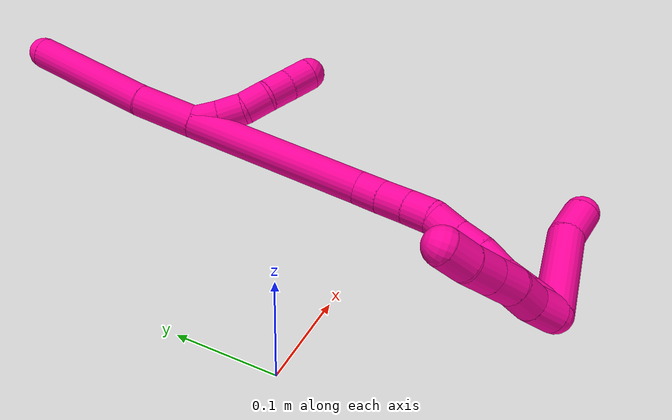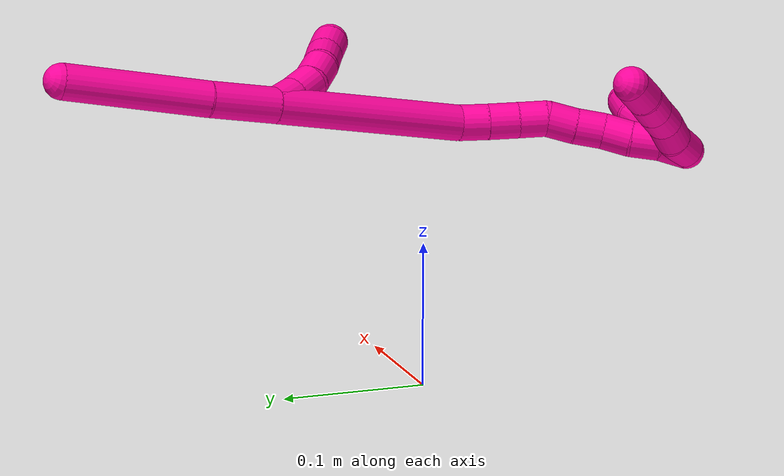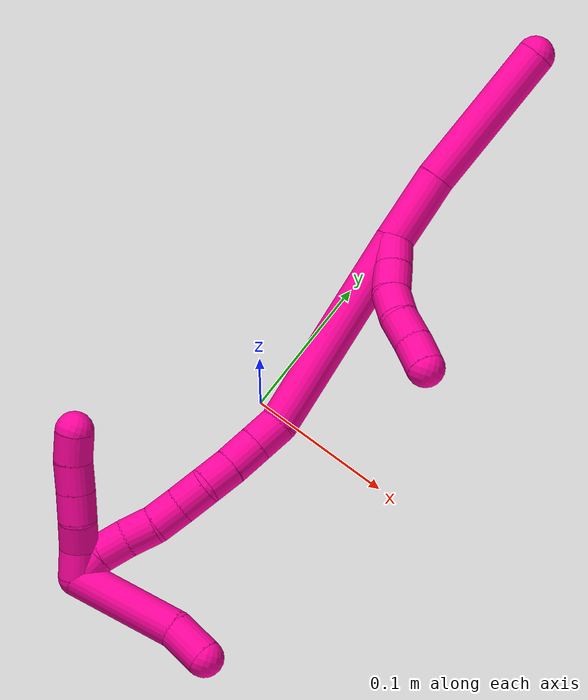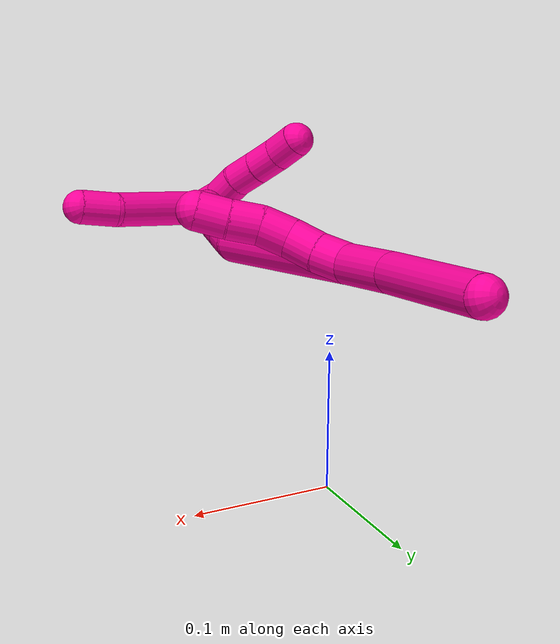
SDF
<sdf version="1.7">
 <world name="default">
  <model name="photoneo_s_sensor">
   <static>1</static>
   <pose>0 0 2 1.57079 1.57079 3.14159</pose>
   <link name="link">
    <inertial><mass>0.1</mass></inertial>
    <sensor name="sensor" type="depth">
     <update_rate>30</update_rate>
     <camera>
      <horizontal_fov>1.22</horizontal_fov>
      <image><width>1920</width><height>1200</height><format>B8G8R8</format></image>
      <clip><near>0.1</near><far>4</far></clip>
      <depth_camera><output>points</output></depth_camera>
     </camera>
     <plugin name="camera_plugin" filename="libgazebo_ros_depth_camera.so">
      <baseline>0.2</baseline>
      <alwaysOn>1</alwaysOn>
      <updateRate>0.0</updateRate>
      <cameraName>camera_ir</cameraName>
      <imageTopicName>/camera/color/image_raw</imageTopicName>
      <cameraInfoTopicName>/camera/color/camera_info</cameraInfoTopicName>
      <depthImageTopicName>/camera/depth/image_raw</depthImageTopicName>
      <depthImageCameraInfoTopicName>/camera/depth/camera_info</depthImageCameraInfoTopicName>
      <pointCloudTopicName>/camera/depth/points</pointCloudTopicName>
      <frameName>fr_optical</frameName>
      <pointCloudCutoff>0.1</pointCloudCutoff>
      <pointCloudCutoffMax>2.0</pointCloudCutoffMax>
      <distortionK1>0</distortionK1>
      <distortionK2>0</distortionK2>
      <distortionK3>0</distortionK3>
      <distortionT1>0</distortionT1>
      <distortionT2>0</distortionT2>
      <CxPrime>0</CxPrime>
      <Cx>0</Cx>
      <Cy>0</Cy>
      <focalLength>0</focalLength>
      <hackBaseline>0</hackBaseline>
     </plugin>
    </sensor>
   </link>
  </model>
  <model name="bin">
   <static>1</static>
   <link name="bottom">
    <collision name="collision-bottom">
     <pose>0 0 -0.01 0 -0 0</pose>
     <geometry><box><size>0.8 0.6 0.02</size></box></geometry>
     <surface>
      <friction><ode><mu>100</mu><mu2>100</mu2></ode></friction>
      <contact><collide_bitmask>65535</collide_bitmask></contact>
     </surface>
    </collision>
   </link>
   <link name="west_wall">
    <collision name="collision-west_wall">
     <pose>-0.41 0 0.1 0 -0 0</pose>
     <geometry><box><size>0.02 0.6 0.2</size></box></geometry>
     <surface>
      <friction><ode><mu>100</mu><mu2>100</mu2></ode></friction>
      <contact><collide_bitmask>65535</collide_bitmask></contact>
     </surface>
    </collision>
   </link>
   <link name="east_wall">
    <collision name="collision-east_wall">
     <pose>0.41 0 0.1 0 -0 0</pose>
     <geometry><box><size>0.02 0.6 0.2</size></box></geometry>
     <surface>
      <friction><ode><mu>100</mu><mu2>100</mu2></ode></friction>
      <contact><collide_bitmask>65535</collide_bitmask></contact>
     </surface>
    </collision>
   </link>
   <link name="south_wall">
    <collision name="collision-south_wall">
     <pose>0 -0.31 0.1 0 -0 0</pose>
     <geometry><box><size>0.8 0.02 0.2</size></box></geometry>
     <surface>
      <friction><ode><mu>100</mu><mu2>100</mu2></ode></friction>
      <contact><collide_bitmask>65535</collide_bitmask></contact>
     </surface>
    </collision>
   </link>
   <link name="north_wall">
    <collision name="collision-north_wall">
     <pose>0 0.31 0.1 0 -0 0</pose>
     <geometry><box><size>0.8 0.02 0.2</size></box></geometry>
     <surface>
      <friction><ode><mu>100</mu><mu2>100</mu2></ode></friction>
      <contact><collide_bitmask>65535</collide_bitmask></contact>
     </surface>
    </collision>
   </link>
  </model>
  <model name="18">
   <static>0</static>
   <link name="18">
    <collision name="collision-cylinder-e_1_2_8">
     <pose>0.001453 0.006551 0.023202 -0.275179 0.060207 -0.008339</pose>
     <geometry><cylinder><radius>0.0125</radius><length>0.048305</length></cylinder></geometry>
     <surface>
      <friction><ode><mu>1.16</mu><mu2>1.16</mu2><slip1>0</slip1><slip2>0</slip2></ode></friction>
      <contact><ode><kp>1e+06</kp><kd>1</kd><max_vel>0</max_vel><min_depth>0.001</min_depth></ode></contact>
     </surface>
    </collision>
    <visual name="visual-cylinder-e_1_2_8">
     <pose>0.001453 0.006551 0.023202 -0.275179 0.060207 -0.008339</pose>
     <geometry><cylinder><radius>0.0125</radius><length>0.048305</length></cylinder></geometry>
     <material><ambient>1 0.007843 0.615686 1</ambient></material>
    </visual>
    <collision name="collision-cylinder-e_2_8_6">
     <pose>0.010036 0.029582 0.093974 -0.333504 0.140669 -0.023715</pose>
     <geometry><cylinder><radius>0.0125</radius><length>0.101695</length></cylinder></geometry>
     <surface>
      <friction><ode><mu>1.16</mu><mu2>1.16</mu2><slip1>0</slip1><slip2>0</slip2></ode></friction>
      <contact><ode><kp>1e+06</kp><kd>1</kd><max_vel>0</max_vel><min_depth>0.001</min_depth></ode></contact>
     </surface>
    </collision>
    <visual name="visual-cylinder-e_2_8_6">
     <pose>0.010036 0.029582 0.093974 -0.333504 0.140669 -0.023715</pose>
     <geometry><cylinder><radius>0.0125</radius><length>0.101695</length></cylinder></geometry>
     <material><ambient>1 0.007843 0.615686 1</ambient></material>
    </visual>
    <collision name="collision-cylinder-e_1_2_9">
     <pose>0.005582 -0.0013 -0.008194 2.98425 0.59227 2.63588</pose>
     <geometry><cylinder><radius>0.0125</radius><length>0.02</length></cylinder></geometry>
     <surface>
      <friction><ode><mu>1.16</mu><mu2>1.16</mu2><slip1>0</slip1><slip2>0</slip2></ode></friction>
      <contact><ode><kp>1e+06</kp><kd>1</kd><max_vel>0</max_vel><min_depth>0.001</min_depth></ode></contact>
     </surface>
    </collision>
    <visual name="visual-cylinder-e_1_2_9">
     <pose>0.005582 -0.0013 -0.008194 2.98425 0.59227 2.63588</pose>
     <geometry><cylinder><radius>0.0125</radius><length>0.02</length></cylinder></geometry>
     <material><ambient>1 0.007843 0.615686 1</ambient></material>
    </visual>
    <collision name="collision-cylinder-e_2_9_10">
     <pose>0.017153 -0.004846 -0.024076 2.85734 0.641994 2.3288</pose>
     <geometry><cylinder><radius>0.0125</radius><length>0.02</length></cylinder></geometry>
     <surface>
      <friction><ode><mu>1.16</mu><mu2>1.16</mu2><slip1>0</slip1><slip2>0</slip2></ode></friction>
      <contact><ode><kp>1e+06</kp><kd>1</kd><max_vel>0</max_vel><min_depth>0.001</min_depth></ode></contact>
     </surface>
    </collision>
    <visual name="visual-cylinder-e_2_9_10">
     <pose>0.017153 -0.004846 -0.024076 2.85734 0.641994 2.3288</pose>
     <geometry><cylinder><radius>0.0125</radius><length>0.02</length></cylinder></geometry>
     <material><ambient>1 0.007843 0.615686 1</ambient></material>
    </visual>
    <collision name="collision-cylinder-e_3_10_11">
     <pose>0.03101 -0.007478 -0.037922 3.07897 0.905786 3.01303</pose>
     <geometry><cylinder><radius>0.0125</radius><length>0.02</length></cylinder></geometry>
     <surface>
      <friction><ode><mu>1.16</mu><mu2>1.16</mu2><slip1>0</slip1><slip2>0</slip2></ode></friction>
      <contact><ode><kp>1e+06</kp><kd>1</kd><max_vel>0</max_vel><min_depth>0.001</min_depth></ode></contact>
     </surface>
    </collision>
    <visual name="visual-cylinder-e_3_10_11">
     <pose>0.03101 -0.007478 -0.037922 3.07897 0.905786 3.01303</pose>
     <geometry><cylinder><radius>0.0125</radius><length>0.02</length></cylinder></geometry>
     <material><ambient>1 0.007843 0.615686 1</ambient></material>
    </visual>
    <collision name="collision-cylinder-e_4_11_12">
     <pose>0.046786 -0.005671 -0.049796 -2.77517 0.912008 -2.41921</pose>
     <geometry><cylinder><radius>0.0125</radius><length>0.02</length></cylinder></geometry>
     <surface>
      <friction><ode><mu>1.16</mu><mu2>1.16</mu2><slip1>0</slip1><slip2>0</slip2></ode></friction>
      <contact><ode><kp>1e+06</kp><kd>1</kd><max_vel>0</max_vel><min_depth>0.001</min_depth></ode></contact>
     </surface>
    </collision>
    <visual name="visual-cylinder-e_4_11_12">
     <pose>0.046786 -0.005671 -0.049796 -2.77517 0.912008 -2.41921</pose>
     <geometry><cylinder><radius>0.0125</radius><length>0.02</length></cylinder></geometry>
     <material><ambient>1 0.007843 0.615686 1</ambient></material>
    </visual>
    <collision name="collision-cylinder-e_5_12_5">
     <pose>0.062661 -0.002172 -0.061412 -2.92374 0.921861 -2.70809</pose>
     <geometry><cylinder><radius>0.0125</radius><length>0.02</length></cylinder></geometry>
     <surface>
      <friction><ode><mu>1.16</mu><mu2>1.16</mu2><slip1>0</slip1><slip2>0</slip2></ode></friction>
      <contact><ode><kp>1e+06</kp><kd>1</kd><max_vel>0</max_vel><min_depth>0.001</min_depth></ode></contact>
     </surface>
    </collision>
    <visual name="visual-cylinder-e_5_12_5">
     <pose>0.062661 -0.002172 -0.061412 -2.92374 0.921861 -2.70809</pose>
     <geometry><cylinder><radius>0.0125</radius><length>0.02</length></cylinder></geometry>
     <material><ambient>1 0.007843 0.615686 1</ambient></material>
    </visual>
    <collision name="collision-cylinder-e_1_2_13">
     <pose>-0.003332 -0.017314 -0.066548 2.88706 -0.048422 -0.374065</pose>
     <geometry><cylinder><radius>0.0125</radius><length>0.137688</length></cylinder></geometry>
     <surface>
      <friction><ode><mu>1.16</mu><mu2>1.16</mu2><slip1>0</slip1><slip2>0</slip2></ode></friction>
      <contact><ode><kp>1e+06</kp><kd>1</kd><max_vel>0</max_vel><min_depth>0.001</min_depth></ode></contact>
     </surface>
    </collision>
    <visual name="visual-cylinder-e_1_2_13">
     <pose>-0.003332 -0.017314 -0.066548 2.88706 -0.048422 -0.374065</pose>
     <geometry><cylinder><radius>0.0125</radius><length>0.137688</length></cylinder></geometry>
     <material><ambient>1 0.007843 0.615686 1</ambient></material>
    </visual>
    <collision name="collision-cylinder-e_2_13_14">
     <pose>-0.007881 -0.03999 -0.141684 2.58358 -0.119626 -0.412138</pose>
     <geometry><cylinder><radius>0.0125</radius><length>0.020395</length></cylinder></geometry>
     <surface>
      <friction><ode><mu>1.16</mu><mu2>1.16</mu2><slip1>0</slip1><slip2>0</slip2></ode></friction>
      <contact><ode><kp>1e+06</kp><kd>1</kd><max_vel>0</max_vel><min_depth>0.001</min_depth></ode></contact>
     </surface>
    </collision>
    <visual name="visual-cylinder-e_2_13_14">
     <pose>-0.007881 -0.03999 -0.141684 2.58358 -0.119626 -0.412138</pose>
     <geometry><cylinder><radius>0.0125</radius><length>0.020395</length></cylinder></geometry>
     <material><ambient>1 0.007843 0.615686 1</ambient></material>
    </visual>
    <collision name="collision-cylinder-e_3_14_15">
     <pose>-0.010196 -0.051061 -0.159217 2.57338 -0.103046 -0.3496</pose>
     <geometry><cylinder><radius>0.0125</radius><length>0.021335</length></cylinder></geometry>
     <surface>
      <friction><ode><mu>1.16</mu><mu2>1.16</mu2><slip1>0</slip1><slip2>0</slip2></ode></friction>
      <contact><ode><kp>1e+06</kp><kd>1</kd><max_vel>0</max_vel><min_depth>0.001</min_depth></ode></contact>
     </surface>
    </collision>
    <visual name="visual-cylinder-e_3_14_15">
     <pose>-0.010196 -0.051061 -0.159217 2.57338 -0.103046 -0.3496</pose>
     <geometry><cylinder><radius>0.0125</radius><length>0.021335</length></cylinder></geometry>
     <material><ambient>1 0.007843 0.615686 1</ambient></material>
    </visual>
    <collision name="collision-cylinder-e_4_15_16">
     <pose>-0.012624 -0.062564 -0.176249 2.52008 -0.133001 -0.408939</pose>
     <geometry><cylinder><radius>0.0125</radius><length>0.020076</length></cylinder></geometry>
     <surface>
      <friction><ode><mu>1.16</mu><mu2>1.16</mu2><slip1>0</slip1><slip2>0</slip2></ode></friction>
      <contact><ode><kp>1e+06</kp><kd>1</kd><max_vel>0</max_vel><min_depth>0.001</min_depth></ode></contact>
     </surface>
    </collision>
    <visual name="visual-cylinder-e_4_15_16">
     <pose>-0.012624 -0.062564 -0.176249 2.52008 -0.133001 -0.408939</pose>
     <geometry><cylinder><radius>0.0125</radius><length>0.020076</length></cylinder></geometry>
     <material><ambient>1 0.007843 0.615686 1</ambient></material>
    </visual>
    <collision name="collision-cylinder-e_5_16_17">
     <pose>-0.017842 -0.072258 -0.192855 2.71217 -0.393309 -1.48054</pose>
     <geometry><cylinder><radius>0.0125</radius><length>0.020285</length></cylinder></geometry>
     <surface>
      <friction><ode><mu>1.16</mu><mu2>1.16</mu2><slip1>0</slip1><slip2>0</slip2></ode></friction>
      <contact><ode><kp>1e+06</kp><kd>1</kd><max_vel>0</max_vel><min_depth>0.001</min_depth></ode></contact>
     </surface>
    </collision>
    <visual name="visual-cylinder-e_5_16_17">
     <pose>-0.017842 -0.072258 -0.192855 2.71217 -0.393309 -1.48054</pose>
     <geometry><cylinder><radius>0.0125</radius><length>0.020285</length></cylinder></geometry>
     <material><ambient>1 0.007843 0.615686 1</ambient></material>
    </visual>
    <collision name="collision-cylinder-e_6_17_18">
     <pose>-0.025007 -0.080702 -0.209686 2.64136 -0.333041 -1.16385</pose>
     <geometry><cylinder><radius>0.0125</radius><length>0.020049</length></cylinder></geometry>
     <surface>
      <friction><ode><mu>1.16</mu><mu2>1.16</mu2><slip1>0</slip1><slip2>0</slip2></ode></friction>
      <contact><ode><kp>1e+06</kp><kd>1</kd><max_vel>0</max_vel><min_depth>0.001</min_depth></ode></contact>
     </surface>
    </collision>
    <visual name="visual-cylinder-e_6_17_18">
     <pose>-0.025007 -0.080702 -0.209686 2.64136 -0.333041 -1.16385</pose>
     <geometry><cylinder><radius>0.0125</radius><length>0.020049</length></cylinder></geometry>
     <material><ambient>1 0.007843 0.615686 1</ambient></material>
    </visual>
    <collision name="collision-cylinder-e_7_18_19">
     <pose>-0.033376 -0.090146 -0.225143 2.54042 -0.531398 -1.44095</pose>
     <geometry><cylinder><radius>0.0125</radius><length>0.020098</length></cylinder></geometry>
     <surface>
      <friction><ode><mu>1.16</mu><mu2>1.16</mu2><slip1>0</slip1><slip2>0</slip2></ode></friction>
      <contact><ode><kp>1e+06</kp><kd>1</kd><max_vel>0</max_vel><min_depth>0.001</min_depth></ode></contact>
     </surface>
    </collision>
    <visual name="visual-cylinder-e_7_18_19">
     <pose>-0.033376 -0.090146 -0.225143 2.54042 -0.531398 -1.44095</pose>
     <geometry><cylinder><radius>0.0125</radius><length>0.020098</length></cylinder></geometry>
     <material><ambient>1 0.007843 0.615686 1</ambient></material>
    </visual>
    <collision name="collision-cylinder-e_8_19_20">
     <pose>-0.042065 -0.100508 -0.239858 2.5166 -0.367765 -1.04465</pose>
     <geometry><cylinder><radius>0.0125</radius><length>0.020008</length></cylinder></geometry>
     <surface>
      <friction><ode><mu>1.16</mu><mu2>1.16</mu2><slip1>0</slip1><slip2>0</slip2></ode></friction>
      <contact><ode><kp>1e+06</kp><kd>1</kd><max_vel>0</max_vel><min_depth>0.001</min_depth></ode></contact>
     </surface>
    </collision>
    <visual name="visual-cylinder-e_8_19_20">
     <pose>-0.042065 -0.100508 -0.239858 2.5166 -0.367765 -1.04465</pose>
     <geometry><cylinder><radius>0.0125</radius><length>0.020008</length></cylinder></geometry>
     <material><ambient>1 0.007843 0.615686 1</ambient></material>
    </visual>
    <collision name="collision-cylinder-e_9_20_1">
     <pose>-0.048765 -0.108694 -0.256572 2.85195 -0.314512 -1.65435</pose>
     <geometry><cylinder><radius>0.0125</radius><length>0.020066</length></cylinder></geometry>
     <surface>
      <friction><ode><mu>1.16</mu><mu2>1.16</mu2><slip1>0</slip1><slip2>0</slip2></ode></friction>
      <contact><ode><kp>1e+06</kp><kd>1</kd><max_vel>0</max_vel><min_depth>0.001</min_depth></ode></contact>
     </surface>
    </collision>
    <visual name="visual-cylinder-e_9_20_1">
     <pose>-0.048765 -0.108694 -0.256572 2.85195 -0.314512 -1.65435</pose>
     <geometry><cylinder><radius>0.0125</radius><length>0.020066</length></cylinder></geometry>
     <material><ambient>1 0.007843 0.615686 1</ambient></material>
    </visual>
    <collision name="collision-cylinder-e_1_1_21">
     <pose>-0.051778 -0.114939 -0.256355 0.359709 0.009155 0.001665</pose>
     <geometry><cylinder><radius>0.0125</radius><length>0.02</length></cylinder></geometry>
     <surface>
      <friction><ode><mu>1.16</mu><mu2>1.16</mu2><slip1>0</slip1><slip2>0</slip2></ode></friction>
      <contact><ode><kp>1e+06</kp><kd>1</kd><max_vel>0</max_vel><min_depth>0.001</min_depth></ode></contact>
     </surface>
    </collision>
    <visual name="visual-cylinder-e_1_1_21">
     <pose>-0.051778 -0.114939 -0.256355 0.359709 0.009155 0.001665</pose>
     <geometry><cylinder><radius>0.0125</radius><length>0.02</length></cylinder></geometry>
     <material><ambient>1 0.007843 0.615686 1</ambient></material>
    </visual>
    <collision name="collision-cylinder-e_2_21_22">
     <pose>-0.05022 -0.123593 -0.23854 0.545671 0.147133 0.041238</pose>
     <geometry><cylinder><radius>0.0125</radius><length>0.02</length></cylinder></geometry>
     <surface>
      <friction><ode><mu>1.16</mu><mu2>1.16</mu2><slip1>0</slip1><slip2>0</slip2></ode></friction>
      <contact><ode><kp>1e+06</kp><kd>1</kd><max_vel>0</max_vel><min_depth>0.001</min_depth></ode></contact>
     </surface>
    </collision>
    <visual name="visual-cylinder-e_2_21_22">
     <pose>-0.05022 -0.123593 -0.23854 0.545671 0.147133 0.041238</pose>
     <geometry><cylinder><radius>0.0125</radius><length>0.02</length></cylinder></geometry>
     <material><ambient>1 0.007843 0.615686 1</ambient></material>
    </visual>
    <collision name="collision-cylinder-e_3_22_23">
     <pose>-0.048931 -0.133138 -0.221112 0.456928 -0.017751 -0.004128</pose>
     <geometry><cylinder><radius>0.0125</radius><length>0.02</length></cylinder></geometry>
     <surface>
      <friction><ode><mu>1.16</mu><mu2>1.16</mu2><slip1>0</slip1><slip2>0</slip2></ode></friction>
      <contact><ode><kp>1e+06</kp><kd>1</kd><max_vel>0</max_vel><min_depth>0.001</min_depth></ode></contact>
     </surface>
    </collision>
    <visual name="visual-cylinder-e_3_22_23">
     <pose>-0.048931 -0.133138 -0.221112 0.456928 -0.017751 -0.004128</pose>
     <geometry><cylinder><radius>0.0125</radius><length>0.02</length></cylinder></geometry>
     <material><ambient>1 0.007843 0.615686 1</ambient></material>
    </visual>
    <collision name="collision-cylinder-e_4_23_24">
     <pose>-0.049315 -0.142228 -0.203304 0.48695 -0.02065 -0.00513</pose>
     <geometry><cylinder><radius>0.0125</radius><length>0.02</length></cylinder></geometry>
     <surface>
      <friction><ode><mu>1.16</mu><mu2>1.16</mu2><slip1>0</slip1><slip2>0</slip2></ode></friction>
      <contact><ode><kp>1e+06</kp><kd>1</kd><max_vel>0</max_vel><min_depth>0.001</min_depth></ode></contact>
     </surface>
    </collision>
    <visual name="visual-cylinder-e_4_23_24">
     <pose>-0.049315 -0.142228 -0.203304 0.48695 -0.02065 -0.00513</pose>
     <geometry><cylinder><radius>0.0125</radius><length>0.02</length></cylinder></geometry>
     <material><ambient>1 0.007843 0.615686 1</ambient></material>
    </visual>
    <collision name="collision-cylinder-e_5_24_4">
     <pose>-0.04858 -0.150789 -0.185301 0.400722 0.094309 0.019166</pose>
     <geometry><cylinder><radius>0.0125</radius><length>0.02</length></cylinder></geometry>
     <surface>
      <friction><ode><mu>1.16</mu><mu2>1.16</mu2><slip1>0</slip1><slip2>0</slip2></ode></friction>
      <contact><ode><kp>1e+06</kp><kd>1</kd><max_vel>0</max_vel><min_depth>0.001</min_depth></ode></contact>
     </surface>
    </collision>
    <visual name="visual-cylinder-e_5_24_4">
     <pose>-0.04858 -0.150789 -0.185301 0.400722 0.094309 0.019166</pose>
     <geometry><cylinder><radius>0.0125</radius><length>0.02</length></cylinder></geometry>
     <material><ambient>1 0.007843 0.615686 1</ambient></material>
    </visual>
    <collision name="collision-cylinder-e_1_1_25">
     <pose>-0.021858 -0.091289 -0.269953 -1.77828 0.969906 -1.1519</pose>
     <geometry><cylinder><radius>0.0125</radius><length>0.072769</length></cylinder></geometry>
     <surface>
      <friction><ode><mu>1.16</mu><mu2>1.16</mu2><slip1>0</slip1><slip2>0</slip2></ode></friction>
      <contact><ode><kp>1e+06</kp><kd>1</kd><max_vel>0</max_vel><min_depth>0.001</min_depth></ode></contact>
     </surface>
    </collision>
    <visual name="visual-cylinder-e_1_1_25">
     <pose>-0.021858 -0.091289 -0.269953 -1.77828 0.969906 -1.1519</pose>
     <geometry><cylinder><radius>0.0125</radius><length>0.072769</length></cylinder></geometry>
     <material><ambient>1 0.007843 0.615686 1</ambient></material>
    </visual>
    <collision name="collision-cylinder-e_2_25_3">
     <pose>0.019583 -0.065543 -0.279005 -2.27955 0.996366 -1.73794</pose>
     <geometry><cylinder><radius>0.0125</radius><length>0.027231</length></cylinder></geometry>
     <surface>
      <friction><ode><mu>1.16</mu><mu2>1.16</mu2><slip1>0</slip1><slip2>0</slip2></ode></friction>
      <contact><ode><kp>1e+06</kp><kd>1</kd><max_vel>0</max_vel><min_depth>0.001</min_depth></ode></contact>
     </surface>
    </collision>
    <visual name="visual-cylinder-e_2_25_3">
     <pose>0.019583 -0.065543 -0.279005 -2.27955 0.996366 -1.73794</pose>
     <geometry><cylinder><radius>0.0125</radius><length>0.027231</length></cylinder></geometry>
     <material><ambient>1 0.007843 0.615686 1</ambient></material>
    </visual>
    <collision name="collision-sphere-3">
     <pose>0.031014 -0.059927 -0.283821 0 -0 0</pose>
     <geometry><sphere><radius>0.0125</radius></sphere></geometry>
     <surface>
      <friction><ode><mu>1.16</mu><mu2>1.16</mu2><slip1>0</slip1><slip2>0</slip2></ode></friction>
      <contact><ode><kp>1e+06</kp><kd>1</kd><max_vel>0</max_vel><min_depth>0.001</min_depth></ode></contact>
     </surface>
    </collision>
    <visual name="visual-sphere-3">
     <pose>0.031014 -0.059927 -0.283821 0 -0 0</pose>
     <geometry><sphere><radius>0.0125</radius></sphere></geometry>
     <material><ambient>1 0.007843 0.615686 1</ambient></material>
    </visual>
    <collision name="collision-sphere-25">
     <pose>0.008153 -0.07116 -0.27419 0 -0 0</pose>
     <geometry><sphere><radius>0.0125</radius></sphere></geometry>
     <surface>
      <friction><ode><mu>1.16</mu><mu2>1.16</mu2><slip1>0</slip1><slip2>0</slip2></ode></friction>
      <contact><ode><kp>1e+06</kp><kd>1</kd><max_vel>0</max_vel><min_depth>0.001</min_depth></ode></contact>
     </surface>
    </collision>
    <visual name="visual-sphere-25">
     <pose>0.008153 -0.07116 -0.27419 0 -0 0</pose>
     <geometry><sphere><radius>0.0125</radius></sphere></geometry>
     <material><ambient>1 0.007843 0.615686 1</ambient></material>
    </visual>
    <collision name="collision-sphere-4">
     <pose>-0.047639 -0.154673 -0.176134 0 -0 0</pose>
     <geometry><sphere><radius>0.0125</radius></sphere></geometry>
     <surface>
      <friction><ode><mu>1.16</mu><mu2>1.16</mu2><slip1>0</slip1><slip2>0</slip2></ode></friction>
      <contact><ode><kp>1e+06</kp><kd>1</kd><max_vel>0</max_vel><min_depth>0.001</min_depth></ode></contact>
     </surface>
    </collision>
    <visual name="visual-sphere-4">
     <pose>-0.047639 -0.154673 -0.176134 0 -0 0</pose>
     <geometry><sphere><radius>0.0125</radius></sphere></geometry>
     <material><ambient>1 0.007843 0.615686 1</ambient></material>
    </visual>
    <collision name="collision-sphere-24">
     <pose>-0.049522 -0.146906 -0.194468 0 -0 0</pose>
     <geometry><sphere><radius>0.0125</radius></sphere></geometry>
     <surface>
      <friction><ode><mu>1.16</mu><mu2>1.16</mu2><slip1>0</slip1><slip2>0</slip2></ode></friction>
      <contact><ode><kp>1e+06</kp><kd>1</kd><max_vel>0</max_vel><min_depth>0.001</min_depth></ode></contact>
     </surface>
    </collision>
    <visual name="visual-sphere-24">
     <pose>-0.049522 -0.146906 -0.194468 0 -0 0</pose>
     <geometry><sphere><radius>0.0125</radius></sphere></geometry>
     <material><ambient>1 0.007843 0.615686 1</ambient></material>
    </visual>
    <collision name="collision-sphere-23">
     <pose>-0.049109 -0.137549 -0.21214 0 -0 0</pose>
     <geometry><sphere><radius>0.0125</radius></sphere></geometry>
     <surface>
      <friction><ode><mu>1.16</mu><mu2>1.16</mu2><slip1>0</slip1><slip2>0</slip2></ode></friction>
      <contact><ode><kp>1e+06</kp><kd>1</kd><max_vel>0</max_vel><min_depth>0.001</min_depth></ode></contact>
     </surface>
    </collision>
    <visual name="visual-sphere-23">
     <pose>-0.049109 -0.137549 -0.21214 0 -0 0</pose>
     <geometry><sphere><radius>0.0125</radius></sphere></geometry>
     <material><ambient>1 0.007843 0.615686 1</ambient></material>
    </visual>
    <collision name="collision-sphere-22">
     <pose>-0.048754 -0.128727 -0.230085 0 -0 0</pose>
     <geometry><sphere><radius>0.0125</radius></sphere></geometry>
     <surface>
      <friction><ode><mu>1.16</mu><mu2>1.16</mu2><slip1>0</slip1><slip2>0</slip2></ode></friction>
      <contact><ode><kp>1e+06</kp><kd>1</kd><max_vel>0</max_vel><min_depth>0.001</min_depth></ode></contact>
     </surface>
    </collision>
    <visual name="visual-sphere-22">
     <pose>-0.048754 -0.128727 -0.230085 0 -0 0</pose>
     <geometry><sphere><radius>0.0125</radius></sphere></geometry>
     <material><ambient>1 0.007843 0.615686 1</ambient></material>
    </visual>
    <collision name="collision-sphere-21">
     <pose>-0.051686 -0.118459 -0.246996 0 -0 0</pose>
     <geometry><sphere><radius>0.0125</radius></sphere></geometry>
     <surface>
      <friction><ode><mu>1.16</mu><mu2>1.16</mu2><slip1>0</slip1><slip2>0</slip2></ode></friction>
      <contact><ode><kp>1e+06</kp><kd>1</kd><max_vel>0</max_vel><min_depth>0.001</min_depth></ode></contact>
     </surface>
    </collision>
    <visual name="visual-sphere-21">
     <pose>-0.051686 -0.118459 -0.246996 0 -0 0</pose>
     <geometry><sphere><radius>0.0125</radius></sphere></geometry>
     <material><ambient>1 0.007843 0.615686 1</ambient></material>
    </visual>
    <collision name="collision-sphere-1">
     <pose>-0.051869 -0.111419 -0.265715 0 -0 0</pose>
     <geometry><sphere><radius>0.0125</radius></sphere></geometry>
     <surface>
      <friction><ode><mu>1.16</mu><mu2>1.16</mu2><slip1>0</slip1><slip2>0</slip2></ode></friction>
      <contact><ode><kp>1e+06</kp><kd>1</kd><max_vel>0</max_vel><min_depth>0.001</min_depth></ode></contact>
     </surface>
    </collision>
    <visual name="visual-sphere-1">
     <pose>-0.051869 -0.111419 -0.265715 0 -0 0</pose>
     <geometry><sphere><radius>0.0125</radius></sphere></geometry>
     <material><ambient>1 0.007843 0.615686 1</ambient></material>
    </visual>
    <collision name="collision-sphere-11">
     <pose>0.038879 -0.007865 -0.044081 0 -0 0</pose>
     <geometry><sphere><radius>0.0125</radius></sphere></geometry>
     <surface>
      <friction><ode><mu>1.16</mu><mu2>1.16</mu2><slip1>0</slip1><slip2>0</slip2></ode></friction>
      <contact><ode><kp>1e+06</kp><kd>1</kd><max_vel>0</max_vel><min_depth>0.001</min_depth></ode></contact>
     </surface>
    </collision>
    <visual name="visual-sphere-11">
     <pose>0.038879 -0.007865 -0.044081 0 -0 0</pose>
     <geometry><sphere><radius>0.0125</radius></sphere></geometry>
     <material><ambient>1 0.007843 0.615686 1</ambient></material>
    </visual>
    <collision name="collision-sphere-10">
     <pose>0.023141 -0.007092 -0.031764 0 -0 0</pose>
     <geometry><sphere><radius>0.0125</radius></sphere></geometry>
     <surface>
      <friction><ode><mu>1.16</mu><mu2>1.16</mu2><slip1>0</slip1><slip2>0</slip2></ode></friction>
      <contact><ode><kp>1e+06</kp><kd>1</kd><max_vel>0</max_vel><min_depth>0.001</min_depth></ode></contact>
     </surface>
    </collision>
    <visual name="visual-sphere-10">
     <pose>0.023141 -0.007092 -0.031764 0 -0 0</pose>
     <geometry><sphere><radius>0.0125</radius></sphere></geometry>
     <material><ambient>1 0.007843 0.615686 1</ambient></material>
    </visual>
    <collision name="collision-sphere-6">
     <pose>0.017165 0.046063 0.141546 0 -0 0</pose>
     <geometry><sphere><radius>0.0125</radius></sphere></geometry>
     <surface>
      <friction><ode><mu>1.16</mu><mu2>1.16</mu2><slip1>0</slip1><slip2>0</slip2></ode></friction>
      <contact><ode><kp>1e+06</kp><kd>1</kd><max_vel>0</max_vel><min_depth>0.001</min_depth></ode></contact>
     </surface>
    </collision>
    <visual name="visual-sphere-6">
     <pose>0.017165 0.046063 0.141546 0 -0 0</pose>
     <geometry><sphere><radius>0.0125</radius></sphere></geometry>
     <material><ambient>1 0.007843 0.615686 1</ambient></material>
    </visual>
    <collision name="collision-sphere-9">
     <pose>0.011165 -0.0026 -0.016389 0 -0 0</pose>
     <geometry><sphere><radius>0.0125</radius></sphere></geometry>
     <surface>
      <friction><ode><mu>1.16</mu><mu2>1.16</mu2><slip1>0</slip1><slip2>0</slip2></ode></friction>
      <contact><ode><kp>1e+06</kp><kd>1</kd><max_vel>0</max_vel><min_depth>0.001</min_depth></ode></contact>
     </surface>
    </collision>
    <visual name="visual-sphere-9">
     <pose>0.011165 -0.0026 -0.016389 0 -0 0</pose>
     <geometry><sphere><radius>0.0125</radius></sphere></geometry>
     <material><ambient>1 0.007843 0.615686 1</ambient></material>
    </visual>
    <collision name="collision-sphere-2">
     <geometry><sphere><radius>0.0125</radius></sphere></geometry>
     <surface>
      <friction><ode><mu>1.16</mu><mu2>1.16</mu2><slip1>0</slip1><slip2>0</slip2></ode></friction>
      <contact><ode><kp>1e+06</kp><kd>1</kd><max_vel>0</max_vel><min_depth>0.001</min_depth></ode></contact>
     </surface>
    </collision>
    <visual name="visual-sphere-2">
     <geometry><sphere><radius>0.0125</radius></sphere></geometry>
     <material><ambient>1 0.007843 0.615686 1</ambient></material>
    </visual>
    <collision name="collision-sphere-19">
     <pose>-0.038468 -0.095046 -0.232287 0 -0 0</pose>
     <geometry><sphere><radius>0.0125</radius></sphere></geometry>
     <surface>
      <friction><ode><mu>1.16</mu><mu2>1.16</mu2><slip1>0</slip1><slip2>0</slip2></ode></friction>
      <contact><ode><kp>1e+06</kp><kd>1</kd><max_vel>0</max_vel><min_depth>0.001</min_depth></ode></contact>
     </surface>
    </collision>
    <visual name="visual-sphere-19">
     <pose>-0.038468 -0.095046 -0.232287 0 -0 0</pose>
     <geometry><sphere><radius>0.0125</radius></sphere></geometry>
     <material><ambient>1 0.007843 0.615686 1</ambient></material>
    </visual>
    <collision name="collision-sphere-8">
     <pose>0.002907 0.013102 0.046403 0 -0 0</pose>
     <geometry><sphere><radius>0.0125</radius></sphere></geometry>
     <surface>
      <friction><ode><mu>1.16</mu><mu2>1.16</mu2><slip1>0</slip1><slip2>0</slip2></ode></friction>
      <contact><ode><kp>1e+06</kp><kd>1</kd><max_vel>0</max_vel><min_depth>0.001</min_depth></ode></contact>
     </surface>
    </collision>
    <visual name="visual-sphere-8">
     <pose>0.002907 0.013102 0.046403 0 -0 0</pose>
     <geometry><sphere><radius>0.0125</radius></sphere></geometry>
     <material><ambient>1 0.007843 0.615686 1</ambient></material>
    </visual>
    <collision name="collision-sphere-12">
     <pose>0.054694 -0.003478 -0.055511 0 -0 0</pose>
     <geometry><sphere><radius>0.0125</radius></sphere></geometry>
     <surface>
      <friction><ode><mu>1.16</mu><mu2>1.16</mu2><slip1>0</slip1><slip2>0</slip2></ode></friction>
      <contact><ode><kp>1e+06</kp><kd>1</kd><max_vel>0</max_vel><min_depth>0.001</min_depth></ode></contact>
     </surface>
    </collision>
    <visual name="visual-sphere-12">
     <pose>0.054694 -0.003478 -0.055511 0 -0 0</pose>
     <geometry><sphere><radius>0.0125</radius></sphere></geometry>
     <material><ambient>1 0.007843 0.615686 1</ambient></material>
    </visual>
    <collision name="collision-sphere-5">
     <pose>0.070628 -0.000866 -0.067313 0 -0 0</pose>
     <geometry><sphere><radius>0.0125</radius></sphere></geometry>
     <surface>
      <friction><ode><mu>1.16</mu><mu2>1.16</mu2><slip1>0</slip1><slip2>0</slip2></ode></friction>
      <contact><ode><kp>1e+06</kp><kd>1</kd><max_vel>0</max_vel><min_depth>0.001</min_depth></ode></contact>
     </surface>
    </collision>
    <visual name="visual-sphere-5">
     <pose>0.070628 -0.000866 -0.067313 0 -0 0</pose>
     <geometry><sphere><radius>0.0125</radius></sphere></geometry>
     <material><ambient>1 0.007843 0.615686 1</ambient></material>
    </visual>
    <collision name="collision-sphere-13">
     <pose>-0.006664 -0.034629 -0.133095 0 -0 0</pose>
     <geometry><sphere><radius>0.0125</radius></sphere></geometry>
     <surface>
      <friction><ode><mu>1.16</mu><mu2>1.16</mu2><slip1>0</slip1><slip2>0</slip2></ode></friction>
      <contact><ode><kp>1e+06</kp><kd>1</kd><max_vel>0</max_vel><min_depth>0.001</min_depth></ode></contact>
     </surface>
    </collision>
    <visual name="visual-sphere-13">
     <pose>-0.006664 -0.034629 -0.133095 0 -0 0</pose>
     <geometry><sphere><radius>0.0125</radius></sphere></geometry>
     <material><ambient>1 0.007843 0.615686 1</ambient></material>
    </visual>
    <collision name="collision-sphere-14">
     <pose>-0.009098 -0.045351 -0.150273 0 -0 0</pose>
     <geometry><sphere><radius>0.0125</radius></sphere></geometry>
     <surface>
      <friction><ode><mu>1.16</mu><mu2>1.16</mu2><slip1>0</slip1><slip2>0</slip2></ode></friction>
      <contact><ode><kp>1e+06</kp><kd>1</kd><max_vel>0</max_vel><min_depth>0.001</min_depth></ode></contact>
     </surface>
    </collision>
    <visual name="visual-sphere-14">
     <pose>-0.009098 -0.045351 -0.150273 0 -0 0</pose>
     <geometry><sphere><radius>0.0125</radius></sphere></geometry>
     <material><ambient>1 0.007843 0.615686 1</ambient></material>
    </visual>
    <collision name="collision-sphere-15">
     <pose>-0.011293 -0.056771 -0.16816 0 -0 0</pose>
     <geometry><sphere><radius>0.0125</radius></sphere></geometry>
     <surface>
      <friction><ode><mu>1.16</mu><mu2>1.16</mu2><slip1>0</slip1><slip2>0</slip2></ode></friction>
      <contact><ode><kp>1e+06</kp><kd>1</kd><max_vel>0</max_vel><min_depth>0.001</min_depth></ode></contact>
     </surface>
    </collision>
    <visual name="visual-sphere-15">
     <pose>-0.011293 -0.056771 -0.16816 0 -0 0</pose>
     <geometry><sphere><radius>0.0125</radius></sphere></geometry>
     <material><ambient>1 0.007843 0.615686 1</ambient></material>
    </visual>
    <collision name="collision-sphere-16">
     <pose>-0.013955 -0.068357 -0.184338 0 -0 0</pose>
     <geometry><sphere><radius>0.0125</radius></sphere></geometry>
     <surface>
      <friction><ode><mu>1.16</mu><mu2>1.16</mu2><slip1>0</slip1><slip2>0</slip2></ode></friction>
      <contact><ode><kp>1e+06</kp><kd>1</kd><max_vel>0</max_vel><min_depth>0.001</min_depth></ode></contact>
     </surface>
    </collision>
    <visual name="visual-sphere-16">
     <pose>-0.013955 -0.068357 -0.184338 0 -0 0</pose>
     <geometry><sphere><radius>0.0125</radius></sphere></geometry>
     <material><ambient>1 0.007843 0.615686 1</ambient></material>
    </visual>
    <collision name="collision-sphere-17">
     <pose>-0.021729 -0.076158 -0.201373 0 -0 0</pose>
     <geometry><sphere><radius>0.0125</radius></sphere></geometry>
     <surface>
      <friction><ode><mu>1.16</mu><mu2>1.16</mu2><slip1>0</slip1><slip2>0</slip2></ode></friction>
      <contact><ode><kp>1e+06</kp><kd>1</kd><max_vel>0</max_vel><min_depth>0.001</min_depth></ode></contact>
     </surface>
    </collision>
    <visual name="visual-sphere-17">
     <pose>-0.021729 -0.076158 -0.201373 0 -0 0</pose>
     <geometry><sphere><radius>0.0125</radius></sphere></geometry>
     <material><ambient>1 0.007843 0.615686 1</ambient></material>
    </visual>
    <collision name="collision-sphere-18">
     <pose>-0.028284 -0.085246 -0.217999 0 -0 0</pose>
     <geometry><sphere><radius>0.0125</radius></sphere></geometry>
     <surface>
      <friction><ode><mu>1.16</mu><mu2>1.16</mu2><slip1>0</slip1><slip2>0</slip2></ode></friction>
      <contact><ode><kp>1e+06</kp><kd>1</kd><max_vel>0</max_vel><min_depth>0.001</min_depth></ode></contact>
     </surface>
    </collision>
    <visual name="visual-sphere-18">
     <pose>-0.028284 -0.085246 -0.217999 0 -0 0</pose>
     <geometry><sphere><radius>0.0125</radius></sphere></geometry>
     <material><ambient>1 0.007843 0.615686 1</ambient></material>
    </visual>
    <collision name="collision-sphere-20">
     <pose>-0.045662 -0.105969 -0.247428 0 -0 0</pose>
     <geometry><sphere><radius>0.0125</radius></sphere></geometry>
     <surface>
      <friction><ode><mu>1.16</mu><mu2>1.16</mu2><slip1>0</slip1><slip2>0</slip2></ode></friction>
      <contact><ode><kp>1e+06</kp><kd>1</kd><max_vel>0</max_vel><min_depth>0.001</min_depth></ode></contact>
     </surface>
    </collision>
    <visual name="visual-sphere-20">
     <pose>-0.045662 -0.105969 -0.247428 0 -0 0</pose>
     <geometry><sphere><radius>0.0125</radius></sphere></geometry>
     <material><ambient>1 0.007843 0.615686 1</ambient></material>
    </visual>
    <inertial>
     <pose>-0.008165 -0.044611 -0.111814 0 -0 0</pose>
     <mass>0.75</mass>
     <inertia>
      <ixx>0.000225</ixx>
      <ixy>0</ixy>
      <ixz>0</ixz>
      <iyy>-0.000183</iyy>
      <iyz>0</iyz>
      <izz>-3.4e-05</izz>
     </inertia>
    </inertial>
   </link>
   <pose>0.038536 0.09167 0.194794 -1.11666 -0.725317 -0.018098</pose>
  </model>
 </world>
</sdf>
